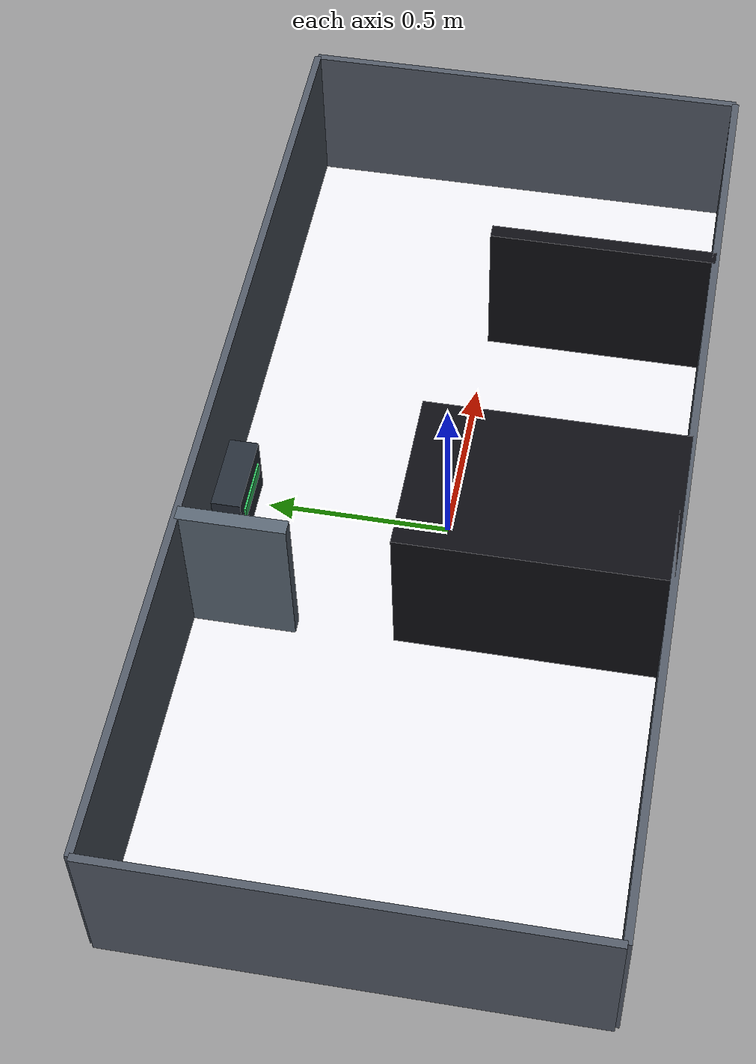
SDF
<?xml version="1.0" ?>
<sdf version="1.8">
  <world name="pinky_factory">
    <physics name="1ms" type="ignored">
      <max_step_size>0.001</max_step_size>
      <real_time_factor>1.0</real_time_factor>
    </physics>

    <plugin
      filename="gz-sim-physics-system"
      name="gz::sim::systems::Physics">
    </plugin>
    <plugin
      filename="gz-sim-sensors-system"
      name="gz::sim::systems::Sensors">
      <render_engine>ogre2</render_engine>
    </plugin>
    <plugin
      filename="gz-sim-user-commands-system"
      name="gz::sim::systems::UserCommands">
    </plugin>
    <plugin
      filename="gz-sim-scene-broadcaster-system"
      name="gz::sim::systems::SceneBroadcaster">
    </plugin>
    <plugin filename="gz-sim-imu-system"
        name="gz::sim::systems::Imu">
    </plugin>

    <!-- Sun Light -->
    <light type="directional" name="sun">
      <cast_shadows>false</cast_shadows>
      <pose>0 0 2 0 0 0</pose>
      <diffuse>1 1 1 1</diffuse>
      <specular>0.6 0.6 0.6 1</specular>
      <attenuation>
        <range>1000</range>
        <constant>1</constant>
        <linear>0</linear>
        <quadratic>0</quadratic>
      </attenuation>
      <direction>0 0 -1</direction>
    </light>

    <!-- Floor Plane (2.70m x 1.25m) -->
    <model name="floor">
      <pose>0 0 0 0 0 0</pose>
      <static>true</static>
      <link name="floor_link">
        <visual name="floor_visual">
          <geometry>
            <plane>
              <normal>0 0 1</normal>
              <size>2.70 1.25</size>
            </plane>
          </geometry>
          <material>
            <diffuse>0.92 0.92 0.94 1</diffuse>
            <specular>0.3 0.3 0.3 1</specular>
          </material>
        </visual>
        <collision name="floor_collision">
          <geometry>
            <plane>
              <normal>0 0 1</normal>
              <size>2.70 1.25</size>
            </plane>
          </geometry>
          <surface>
            <contact>
              <collide_without_contact>true</collide_without_contact>
            </contact>
          </surface>
        </collision>
      </link>
    </model>

    <!-- Outer Perimeter Walls (2.70m x 1.25m x 0.44m) -->
    <model name="wall_front">
      <static>true</static>
      <pose>0 0.625 0.22 0 0 0</pose>
      <link name="wall_link_front">
        <visual name="wall_visual_front">
          <geometry>
            <box>
              <size>2.70 0.02 0.44</size>
            </box>
          </geometry>
          <material>
            <diffuse>0.32 0.35 0.40 1</diffuse>
            <specular>0.2 0.2 0.2 1</specular>
          </material>
        </visual>
        <collision name="wall_collision_front">
          <geometry>
            <box>
              <size>2.70 0.02 0.44</size>
            </box>
          </geometry>
        </collision>
      </link>
    </model>

    <model name="wall_back">
      <static>true</static>
      <pose>0 -0.625 0.22 0 0 0</pose>
      <link name="wall_link_back">
        <visual name="wall_visual_back">
          <geometry>
            <box>
              <size>2.70 0.02 0.44</size>
            </box>
          </geometry>
          <material>
            <diffuse>0.32 0.35 0.40 1</diffuse>
            <specular>0.2 0.2 0.2 1</specular>
          </material>
        </visual>
        <collision name="wall_collision_back">
          <geometry>
            <box>
              <size>2.70 0.02 0.44</size>
            </box>
          </geometry>
        </collision>
      </link>
    </model>

    <model name="wall_left">
      <static>true</static>
      <pose>-1.35 0 0.22 0 0 0</pose>
      <link name="wall_link_left">
        <visual name="wall_visual_left">
          <geometry>
            <box>
              <size>0.02 1.25 0.44</size>
            </box>
          </geometry>
          <material>
            <diffuse>0.32 0.35 0.40 1</diffuse>
            <specular>0.2 0.2 0.2 1</specular>
          </material>
        </visual>
        <collision name="wall_collision_left">
          <geometry>
            <box>
              <size>0.02 1.25 0.44</size>
            </box>
          </geometry>
        </collision>
      </link>
    </model>

    <model name="wall_right">
      <static>true</static>
      <pose>1.35 0 0.22 0 0 0</pose>
      <link name="wall_link_right">
        <visual name="wall_visual_right">
          <geometry>
            <box>
              <size>0.02 1.25 0.44</size>
            </box>
          </geometry>
          <material>
            <diffuse>0.32 0.35 0.40 1</diffuse>
            <specular>0.2 0.2 0.2 1</specular>
          </material>
        </visual>
        <collision name="wall_collision_right">
          <geometry>
            <box>
              <size>0.02 1.25 0.44</size>
            </box>
          </geometry>
        </collision>
      </link>
    </model>

    <!-- 1. Bedroom Upper Partition Wall (above door): x=-0.38, y in [0.34, 0.625] -->
    <model name="bedroom_upper_wall">
      <static>true</static>
      <pose>-0.38 0.4825 0.22 0 0 0</pose>
      <link name="link">
        <visual name="visual">
          <geometry>
            <box>
              <size>0.04 0.285 0.44</size>
            </box>
          </geometry>
          <material>
            <diffuse>0.35 0.40 0.45 1</diffuse>
            <specular>0.2 0.2 0.2 1</specular>
          </material>
        </visual>
        <collision name="collision">
          <geometry>
            <box>
              <size>0.04 0.285 0.44</size>
            </box>
          </geometry>
        </collision>
      </link>
    </model>
    <!-- Note: Bedroom doorway is open between y=0.08 and y=0.34 (width = 0.26m) -->

    <!-- 2. Central Void Solid Block (black filled box drawn by user): x in [-0.38, 0.08], y in [-0.625, 0.08] -->
    <model name="central_void_block">
      <static>true</static>
      <pose>-0.15 -0.2725 0.22 0 0 0</pose>
      <link name="link">
        <visual name="visual">
          <geometry>
            <box>
              <size>0.46 0.705 0.44</size>
            </box>
          </geometry>
          <material>
            <diffuse>0.05 0.05 0.07 1</diffuse>
            <specular>0.1 0.1 0.1 1</specular>
          </material>
        </visual>
        <collision name="collision">
          <geometry>
            <box>
              <size>0.46 0.705 0.44</size>
            </box>
          </geometry>
        </collision>
      </link>
    </model>

    <!-- 3. Right Vertical Partition Wall (drawn by user between Dining and Kitchen): x=0.72, y in [-0.625, 0.00] -->
    <model name="kitchen_dividing_wall">
      <static>true</static>
      <pose>0.72 -0.3125 0.22 0 0 0</pose>
      <link name="link">
        <visual name="visual">
          <geometry>
            <box>
              <size>0.04 0.625 0.44</size>
            </box>
          </geometry>
          <material>
            <diffuse>0.05 0.05 0.07 1</diffuse>
            <specular>0.1 0.1 0.1 1</specular>
          </material>
        </visual>
        <collision name="collision">
          <geometry>
            <box>
              <size>0.04 0.625 0.44</size>
            </box>
          </geometry>
        </collision>
      </link>
    </model>
    <!-- Note: Passage into Kitchen is open above y=0.00 (width = 0.625m) -->

    <!-- Roborock Charging Dock Station (at top wall, exactly matching image dock) -->
    <model name="roborock_dock">
      <static>true</static>
      <pose>-0.04 0.58 0.09 0 0 0</pose>
      <link name="dock_link">
        <visual name="dock_base_visual">
          <geometry>
            <box>
              <size>0.22 0.09 0.18</size>
            </box>
          </geometry>
          <material>
            <diffuse>0.15 0.18 0.22 1</diffuse>
            <specular>0.5 0.5 0.5 1</specular>
          </material>
        </visual>
        <visual name="dock_accent_visual">
          <pose>0 -0.04 0.02 0 0 0</pose>
          <geometry>
            <box>
              <size>0.16 0.02 0.04</size>
            </box>
          </geometry>
          <material>
            <diffuse>0.2 0.8 0.4 1</diffuse>
            <emissive>0.1 0.5 0.2 1</emissive>
          </material>
        </visual>
        <collision name="dock_collision">
          <geometry>
            <box>
              <size>0.22 0.09 0.18</size>
            </box>
          </geometry>
        </collision>
      </link>
    </model>

    <!-- Overhead Gazebo Monitoring Camera -->
    <model name="camera">
      <static>true</static>
      <pose>0 0 1.65 0 1.570796 1.570796</pose>
      <link name="link">
        <pose>0 0 0 0 0 0</pose>
        <inertial>
          <mass>0.1</mass>
          <inertia>
            <ixx>0.000166667</ixx>
            <iyy>0.000166667</iyy>
            <izz>0.000166667</izz>
          </inertia>
        </inertial>
        <collision name="collision">
          <geometry>
            <box>
              <size>0.1 0.1 0.1</size>
            </box>
          </geometry>
        </collision>
        <sensor name="camera" type="camera">
          <camera>
            <horizontal_fov>2.094</horizontal_fov>
            <image>
              <width>640</width>
              <height>480</height>
            </image>
            <clip>
              <near>0.1</near>
              <far>100</far>
            </clip>
          </camera>
          <always_on>1</always_on>
          <update_rate>30</update_rate>
          <visualize>true</visualize>
          <topic>camera</topic>
        </sensor>
      </link>
    </model>
  </world>
</sdf>
